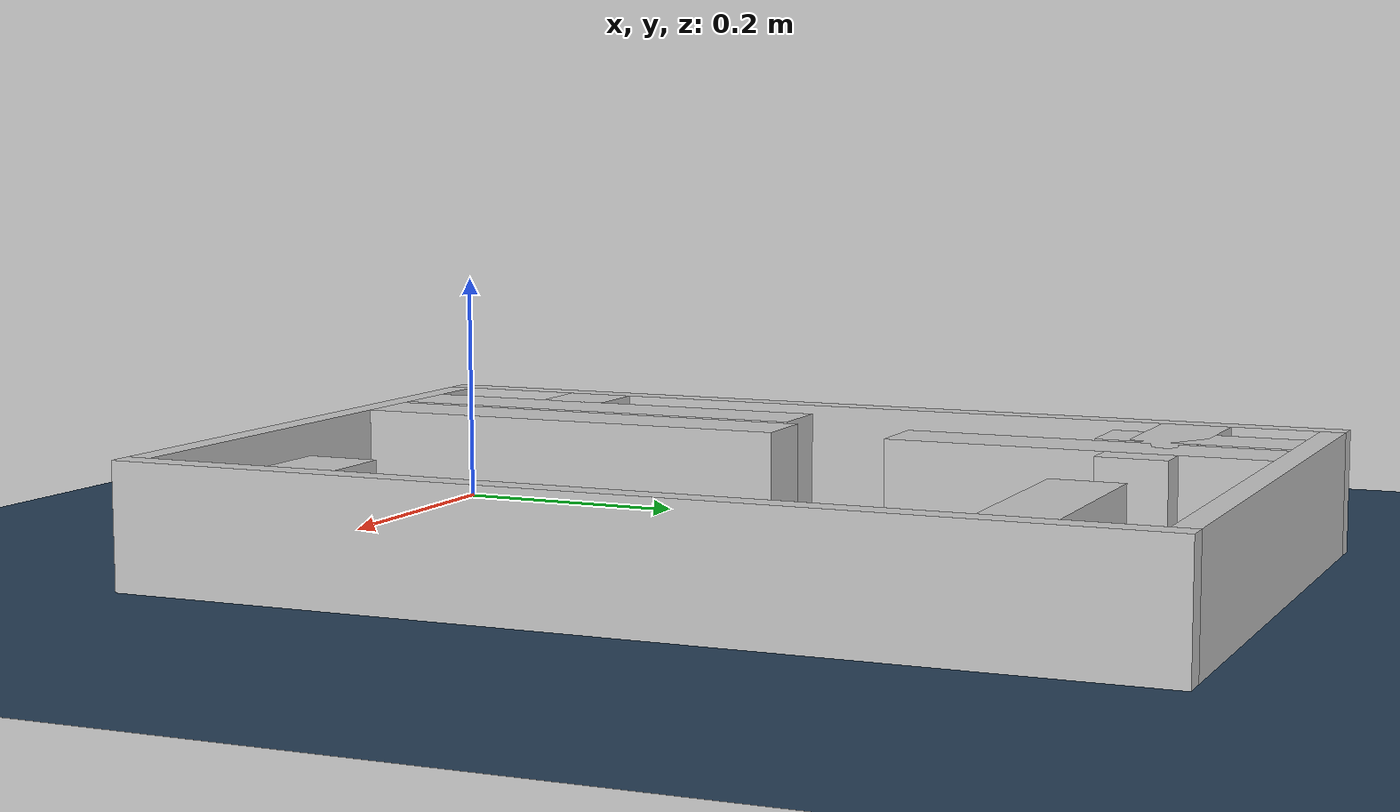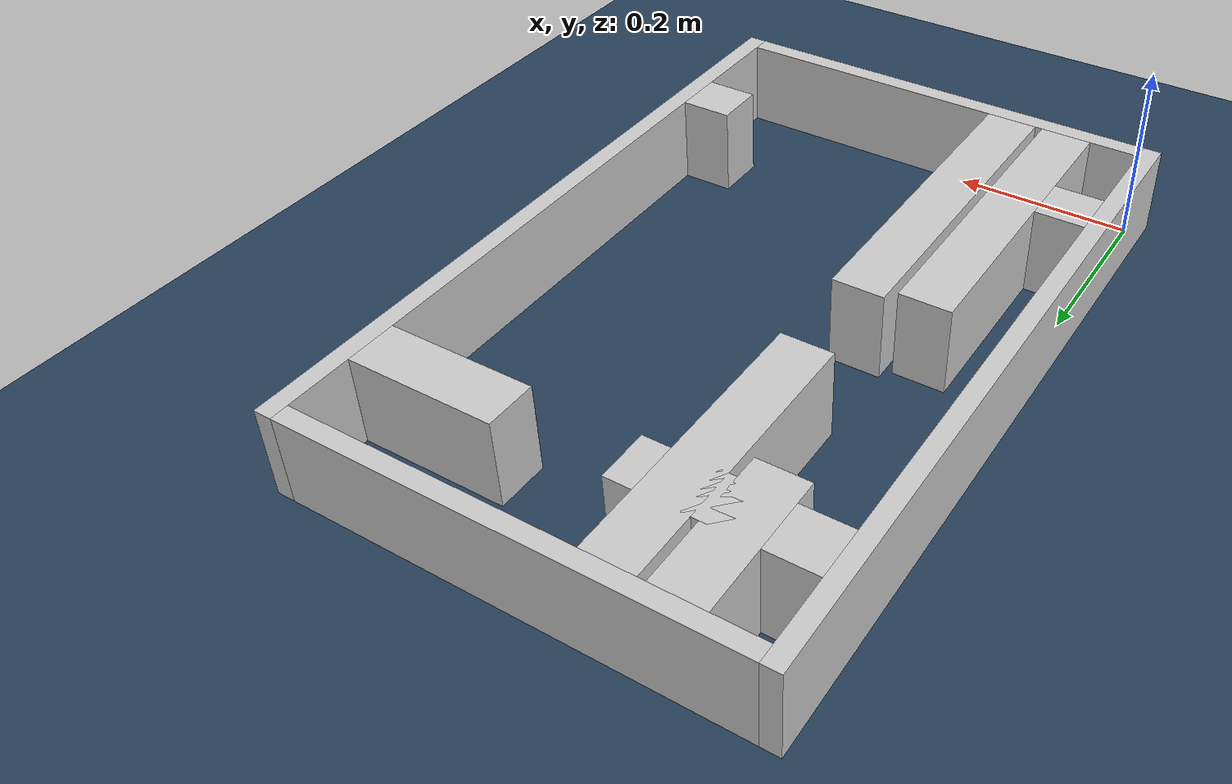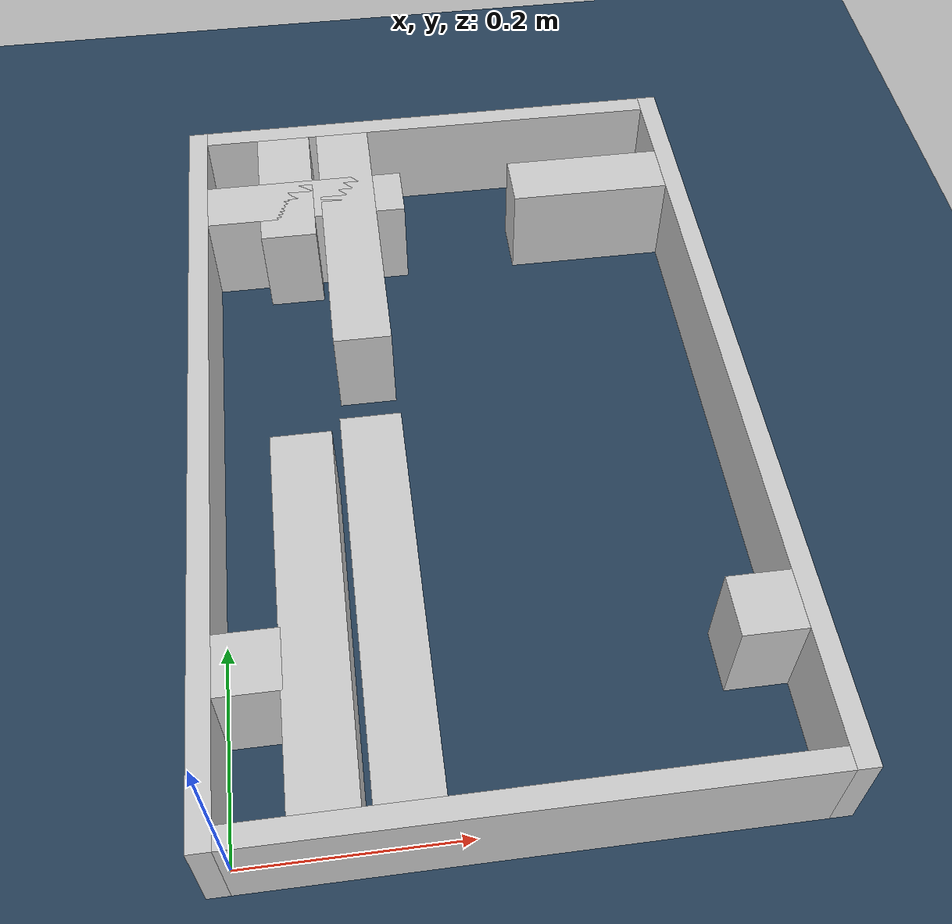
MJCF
<?xml version="1.0" ?>
<mujoco model="generated_real_template">
  <compiler angle="degree"/>
  <option timestep="0.002" integrator="implicitfast" iterations="100" cone="elliptic"/>
  <default>
    <geom density="1"/>
  </default>
  <asset>
    <texture builtin="gradient" height="3072" rgb1="0.3 0.5 0.7" rgb2="0 0 0" type="skybox" width="512"/>
    <texture builtin="checker" height="300" mark="edge" markrgb="0.8 0.8 0.8" name="groundplane" rgb1="0.2 0.3 0.4" rgb2="0.1 0.2 0.3" type="2d" width="300"/>
    <material name="groundplane" reflectance="0.2" texrepeat="5 5" texture="groundplane" texuniform="true"/>
  </asset>
  <worldbody>
    <light dir="0 0 -1" directional="true" pos="0 0 1.5"/>
    <geom name="floor" type="plane" condim="4" friction="0.5 0.005 0.001" material="groundplane" size="0 0 0.05"/>
    <body name="walls">
      <geom name="wall_boundary_left" type="box" condim="4" friction="1.0 0.005 0.0001" rgba="0.8 0.8 0.8 1" pos="-0.010000 0.387500 0.050000" euler="0 0 0.000000" size="0.010000 0.407500 0.050000"/>
      <geom name="wall_boundary_right" type="box" condim="4" friction="1.0 0.005 0.0001" rgba="0.8 0.8 0.8 1" pos="0.500000 0.387500 0.050000" euler="0 0 0.000000" size="0.010000 0.407500 0.050000"/>
      <geom name="wall_boundary_bottom" type="box" condim="4" friction="1.0 0.005 0.0001" rgba="0.8 0.8 0.8 1" pos="0.245000 -0.010000 0.050000" euler="0 0 0.000000" size="0.245000 0.010000 0.050000"/>
      <geom name="wall_boundary_top" type="box" condim="4" friction="1.0 0.005 0.0001" rgba="0.8 0.8 0.8 1" pos="0.245000 0.785000 0.050000" euler="0 0 0.000000" size="0.245000 0.010000 0.050000"/>
      <geom name="wall_inner_1_1" type="box" condim="4" friction="1.0 0.005 0.0001" rgba="0.8 0.8 0.8 1" pos="0.028522 0.131748 0.050000" euler="0 0 0.000000" size="0.028522 0.028500 0.050000"/>
      <geom name="wall_inner_1_2" type="box" condim="4" friction="1.0 0.005 0.0001" rgba="0.8 0.8 0.8 1" pos="0.460983 0.131748 0.050000" euler="0 0 0.000000" size="0.029017 0.028500 0.050000"/>
      <geom name="wall_inner_2_1" type="box" condim="4" friction="1.0 0.005 0.0001" rgba="0.8 0.8 0.8 1" pos="0.148634 0.185594 0.050000" euler="0 0 90.000000" size="0.185594 0.028500 0.050000"/>
      <geom name="wall_inner_2_2" type="box" condim="4" friction="1.0 0.005 0.0001" rgba="0.8 0.8 0.8 1" pos="0.148634 0.621192 0.050000" euler="0 0 90.000000" size="0.153808 0.028500 0.050000"/>
      <geom name="wall_inner_3_1" type="box" condim="4" friction="1.0 0.005 0.0001" rgba="0.8 0.8 0.8 1" pos="0.103605 0.674200 0.050000" euler="0 0 0.000000" size="0.103605 0.028500 0.050000"/>
      <geom name="wall_inner_3_2" type="box" condim="4" friction="1.0 0.005 0.0001" rgba="0.8 0.8 0.8 1" pos="0.407787 0.674200 0.050000" euler="0 0 0.000000" size="0.082213 0.028500 0.050000"/>
      <geom name="wall_inner_4_1" type="box" condim="4" friction="1.0 0.005 0.0001" rgba="0.8 0.8 0.8 1" pos="0.083493 0.179054 0.050000" euler="0 0 90.000000" size="0.179054 0.028500 0.050000"/>
      <geom name="wall_inner_4_2" type="box" condim="4" friction="1.0 0.005 0.0001" rgba="0.8 0.8 0.8 1" pos="0.083493 0.697158 0.050000" euler="0 0 90.000000" size="0.077842 0.028500 0.050000"/>
    </body>
  </worldbody>
</mujoco>
